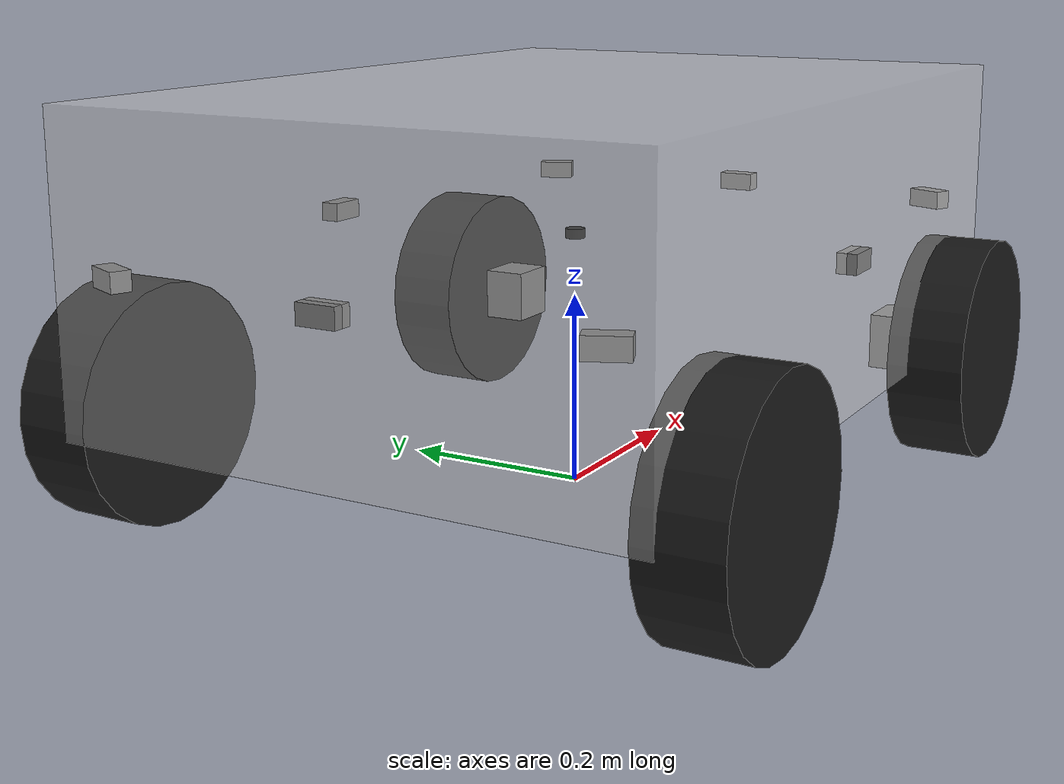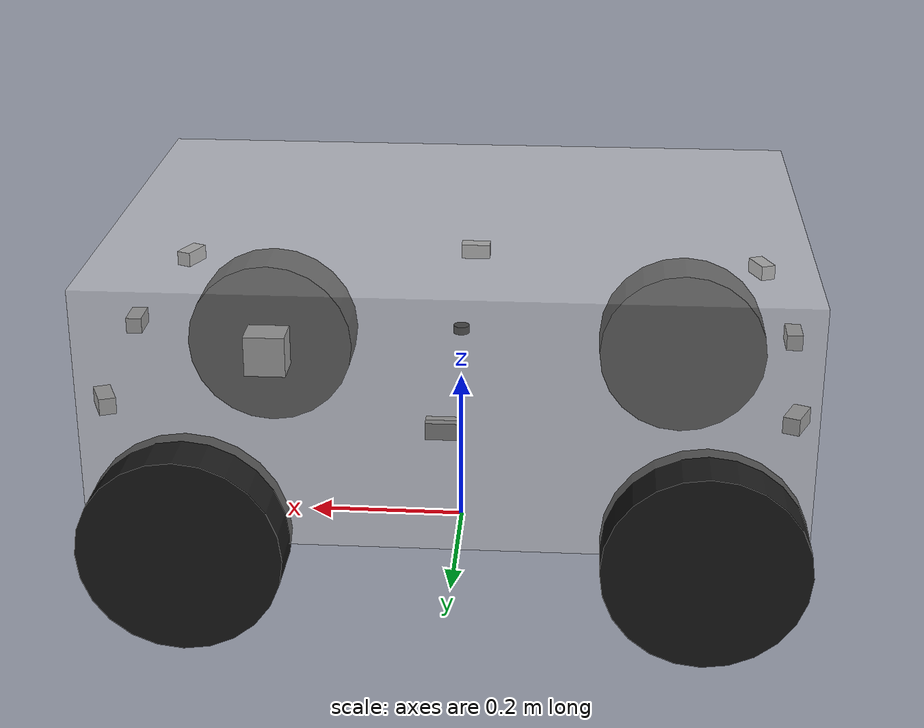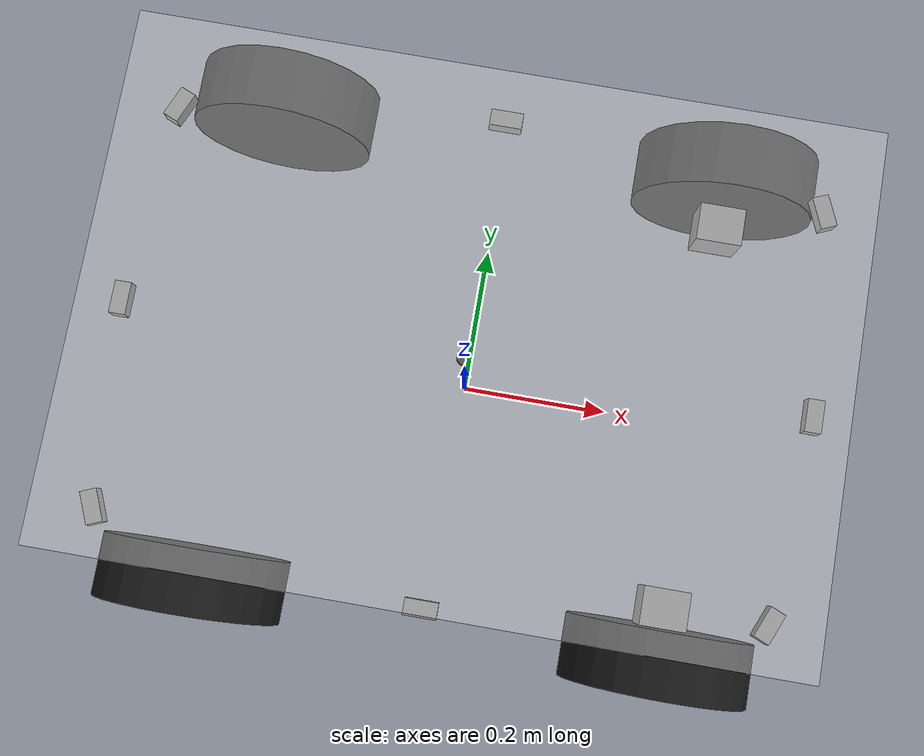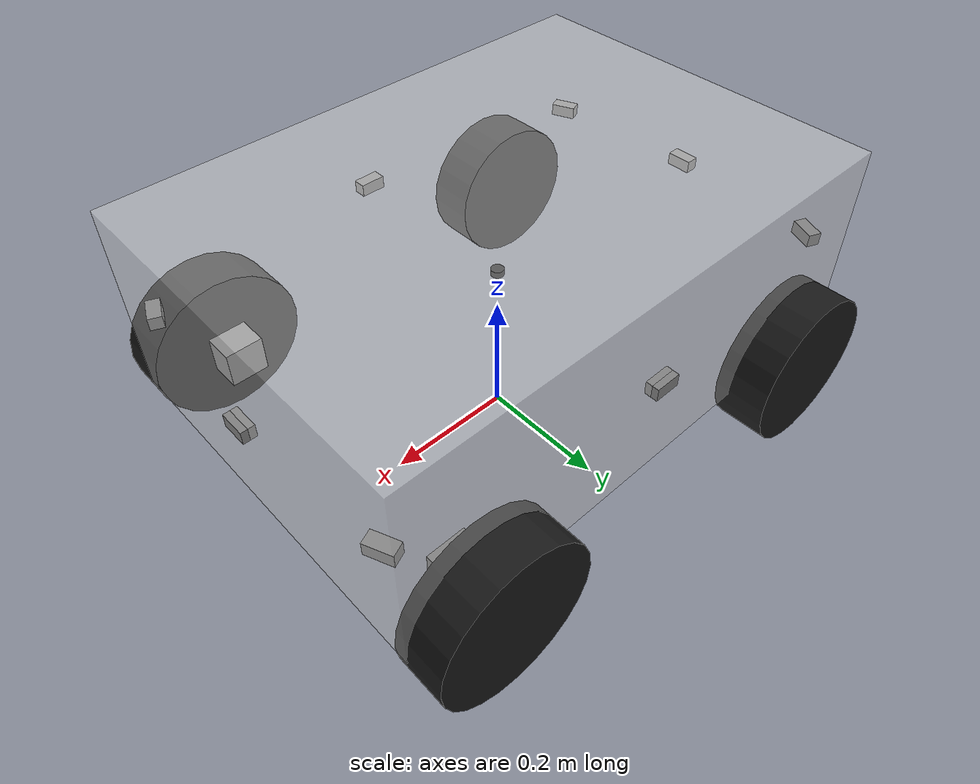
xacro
<?xml version="1.0"?>
<robot name="mk_mini" xmlns:xacro="http://ros.org/wiki/xacro">

    <xacro:property name="PI" value="3.1415926535897931"/>

    <xacro:property name="chassis_length" value="0.84"/>
    <xacro:property name="chassis_width" value="0.60"/>
    <xacro:property name="chassis_height" value="0.31"/>
    <xacro:property name="chassis_mass" value="40.0"/>
    <xacro:property name="ground_clearance" value="0.111"/>

    <xacro:property name="wheel_radius" value="0.12"/>
    <xacro:property name="wheel_width" value="0.08"/>
    <xacro:property name="wheel_mass" value="2.5"/>
    <xacro:property name="wheelbase" value="0.60"/>
    <xacro:property name="track_width" value="0.517"/>

    <xacro:macro name="box_inertia" params="m x y z">
        <inertial>
            <mass value="${m}"/>
            <inertia ixx="${(m/12) * (y*y + z*z)}" ixy="0.0" ixz="0.0"
                     iyy="${(m/12) * (x*x + z*z)}" iyz="0.0"
                     izz="${(m/12) * (x*x + y*y)}"/>
        </inertial>
    </xacro:macro>

    <xacro:macro name="cylinder_inertia" params="m r h">
        <inertial>
            <mass value="${m}"/>
            <inertia ixx="${(m/12) * (3*r*r + h*h)}" ixy="0.0" ixz="0.0"
                     iyy="${(m/12) * (3*r*r + h*h)}" iyz="0.0"
                     izz="${(m/2) * (r*r)}"/>
        </inertial>
    </xacro:macro>

    <xacro:macro name="ultrasonic_sensor" params="prefix x y z yaw">
        <link name="sonar_${prefix}">
            <visual>
                <geometry><box size="0.02 0.04 0.02"/></geometry>
                <material name="grey"><color rgba="0.5 0.5 0.5 1.0"/></material>
            </visual>
            <xacro:box_inertia m="0.05" x="0.02" y="0.04" z="0.02"/>
        </link>

        <joint name="sonar_${prefix}_joint" type="fixed">
            <parent link="base_link"/>
            <child link="sonar_${prefix}"/>
            <origin xyz="${x} ${y} ${z}" rpy="0 0 ${yaw}"/>
        </joint>

        <gazebo reference="sonar_${prefix}">
            <sensor type="ray" name="sonar_${prefix}_sensor">
                <always_on>true</always_on>
                <update_rate>20.0</update_rate> <visualize>true</visualize> <ray>
                    <scan>
                        <horizontal>
                          <samples>5</samples>
			  <resolution>1</resolution>
                          <min_angle>-0.13</min_angle>
			  <max_angle>0.13</max_angle>
                        </horizontal>
                    </scan>
                    <range>
                      <min>0.05</min>
		      <max>3.00</max>
		      <resolution>0.001</resolution>
		    </range>
                </ray>

                <plugin name="gazebo_ros_sonar_${prefix}" filename="libgazebo_ros_ray_sensor.so">
                    <ros>
                        <remapping>~/out:=/simulation/sonar_${prefix}</remapping>
                    </ros>
		    <output_type>sensor_msgs/LaserScan</output_type>
                    <frame_name>sonar_${prefix}</frame_name>
		</plugin>
            </sensor>
        </gazebo>
    </xacro:macro>

    <link name="base_footprint"/>

    <link name="base_link">
        <visual>
            <geometry>
                <box size="${chassis_length} ${chassis_width} ${chassis_height}"/>
            </geometry>
            <material name="translucent_white"><color rgba="0.9 0.9 0.9 0.4"/></material>
        </visual>
        <collision>
            <geometry>
                <box size="${chassis_length} ${chassis_width} ${chassis_height}"/>
            </geometry>
        </collision>
        <xacro:box_inertia m="${chassis_mass}" x="${chassis_length}" y="${chassis_width}" z="${chassis_height}"/>
    </link>

    <joint name="base_joint" type="fixed">
        <parent link="base_footprint"/>
        <child link="base_link"/>
        <origin xyz="0 0 ${ground_clearance + (chassis_height/2.0)}" rpy="0 0 0"/>
    </joint>

    <xacro:macro name="rear_wheel" params="prefix y_reflect">
        <link name="${prefix}_rear_wheel">
            <visual>
                <geometry><cylinder radius="${wheel_radius}" length="${wheel_width}"/></geometry>
                <material name="black"><color rgba="0.1 0.1 0.1 1.0"/></material>
            </visual>
            <collision>
                <geometry><cylinder radius="${wheel_radius}" length="${wheel_width}"/></geometry>
            </collision>
            <xacro:cylinder_inertia m="${wheel_mass}" r="${wheel_radius}" h="${wheel_width}"/>
        </link>

        <joint name="${prefix}_rear_wheel_joint" type="continuous">
            <parent link="base_link"/>
            <child link="${prefix}_rear_wheel"/>
            <origin xyz="${-wheelbase/2.0} ${y_reflect * (track_width/2.0 + 0.06)} ${-chassis_height/2.0 + (wheel_radius - ground_clearance)}" rpy="${PI/2} 0 0"/>
            <axis xyz="0 0 -1"/>
        </joint>

        <gazebo reference="${prefix}_rear_wheel">
            <mu1>1.0</mu1>
            <mu2>1.0</mu2>
            <material>Gazebo/DarkGrey</material>
        </gazebo>
    </xacro:macro>

    <xacro:macro name="front_wheel_steering" params="prefix y_reflect">
        <link name="${prefix}_steering_knuckle">
            <visual>
                <geometry><box size="0.06 0.06 0.06"/></geometry>
                <material name="grey"><color rgba="0.5 0.5 0.5 1.0"/></material>
            </visual>
            <xacro:box_inertia m="0.5" x="0.06" y="0.06" z="0.06"/>
        </link>

        <joint name="${prefix}_steering_joint" type="revolute">
            <parent link="base_link"/>
            <child link="${prefix}_steering_knuckle"/>
            <origin xyz="${wheelbase/2.0} ${y_reflect * track_width/2.0} ${-chassis_height/2.0 + (wheel_radius - ground_clearance)}" rpy="0 0 0"/>
            <axis xyz="0 0 1"/>
            <limit lower="-0.6" upper="0.6" effort="100.0" velocity="2.0"/>
        </joint>

        <link name="${prefix}_front_wheel">
            <visual>
                <geometry><cylinder radius="${wheel_radius}" length="${wheel_width}"/></geometry>
                <material name="black"><color rgba="0.1 0.1 0.1 1.0"/></material>
            </visual>
            <collision>
                <geometry><cylinder radius="${wheel_radius}" length="${wheel_width}"/></geometry>
            </collision>
            <xacro:cylinder_inertia m="${wheel_mass}" r="${wheel_radius}" h="${wheel_width}"/>
        </link>

        <joint name="${prefix}_front_wheel_joint" type="continuous">
            <parent link="${prefix}_steering_knuckle"/>
            <child link="${prefix}_front_wheel"/>
            <origin xyz="0 ${y_reflect * 0.06} 0" rpy="${PI/2} 0 0"/>
            <axis xyz="0 0 -1"/>
        </joint>

        <gazebo reference="${prefix}_front_wheel">
            <mu1>0.8</mu1>
            <mu2>0.8</mu2>
            <material>Gazebo/DarkGrey</material>
        </gazebo>
    </xacro:macro>

    <xacro:rear_wheel prefix="left" y_reflect="1"/>
    <xacro:rear_wheel prefix="right" y_reflect="-1"/>
    <xacro:front_wheel_steering prefix="left" y_reflect="1"/>
    <xacro:front_wheel_steering prefix="right" y_reflect="-1"/>

    <xacro:ultrasonic_sensor prefix="front_center" x="0.42" y="0.0" z="0.0" yaw="0.0"/>
    <xacro:ultrasonic_sensor prefix="front_left"   x="0.40" y="0.25" z="0.0" yaw="0.4"/>
    <xacro:ultrasonic_sensor prefix="front_right"  x="0.40" y="-0.25" z="0.0" yaw="-0.4"/>

    <xacro:ultrasonic_sensor prefix="rear_center"  x="-0.42" y="0.0" z="0.0" yaw="${PI}"/>
    <xacro:ultrasonic_sensor prefix="rear_left"    x="-0.40" y="0.25" z="0.0" yaw="${PI - 0.4}"/>
    <xacro:ultrasonic_sensor prefix="rear_right"   x="-0.40" y="-0.25" z="0.0" yaw="${PI + 0.4}"/>

    <xacro:ultrasonic_sensor prefix="side_left"    x="0.0" y="0.30" z="0.0" yaw="${PI/2}"/>
    <xacro:ultrasonic_sensor prefix="side_right"   x="0.0" y="-0.30" z="0.0" yaw="${-PI/2}"/>

    <link name="steering_wheel_link">
        <visual>
            <geometry><cylinder radius="0.01" length="0.01"/></geometry>
            <material name="translucent_white"><color rgba="0 0 0 0"/></material>
        </visual>
        <xacro:cylinder_inertia m="0.01" r="0.01" h="0.01"/>
    </link>

    <joint name="steering_wheel_joint" type="continuous">
        <parent link="base_link"/>
        <child link="steering_wheel_link"/>
        <origin xyz="0 0 0" rpy="0 0 0"/>
        <axis xyz="0 0 1"/>
    </joint>

    <gazebo>
        <plugin name="gazebo_ros_ackermann_drive" filename="libgazebo_ros_ackermann_drive.so">
            <update_rate>50.0</update_rate>

            <front_left_joint>left_front_wheel_joint</front_left_joint>
            <front_right_joint>right_front_wheel_joint</front_right_joint>
            <rear_left_joint>left_rear_wheel_joint</rear_left_joint>
            <rear_right_joint>right_rear_wheel_joint</rear_right_joint>

            <left_steering_joint>left_steering_joint</left_steering_joint>
            <right_steering_joint>right_steering_joint</right_steering_joint>

            <steering_wheel_joint>steering_wheel_joint</steering_wheel_joint>

            <wheel_separation>${track_width}</wheel_separation>
            <wheel_diameter>${wheel_radius * 2.0}</wheel_diameter>
            <wheelbase>${wheelbase}</wheelbase>

            <max_steer>0.6</max_steer>
            <max_speed>3.0</max_speed>
            <max_steering_angle>0.6</max_steering_angle>
            <max_steering_rate>1.0</max_steering_rate>

            <ros>
                <remapping>cmd_vel:=cmd_vel</remapping>
                <remapping>odom:=odom</remapping>
            </ros>

            <publish_odom>true</publish_odom>
            <publish_odom_tf>true</publish_odom_tf>
            <publish_wheel_tf>true</publish_wheel_tf>
            <publish_distance_aware_steering>true</publish_distance_aware_steering>
            <odometry_frame>odom</odometry_frame>
            <robot_base_frame>base_footprint</robot_base_frame>
        </plugin>
    </gazebo>
</robot>
